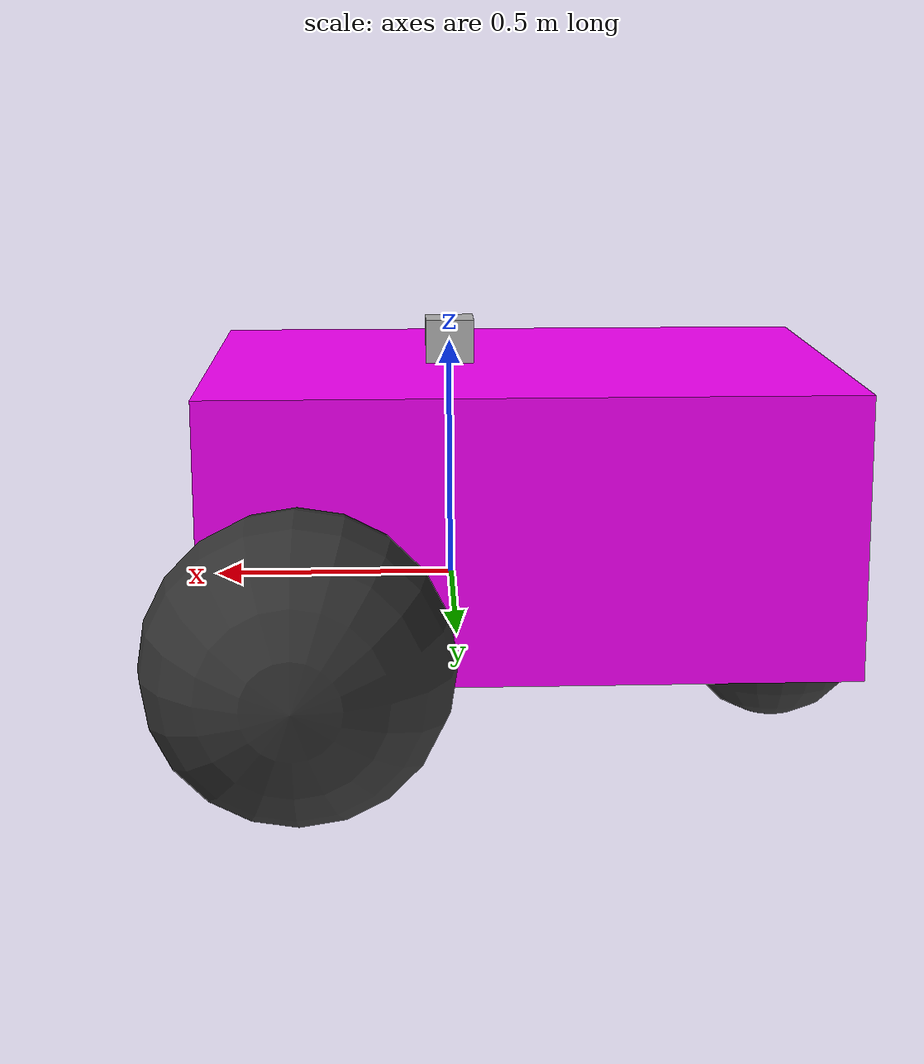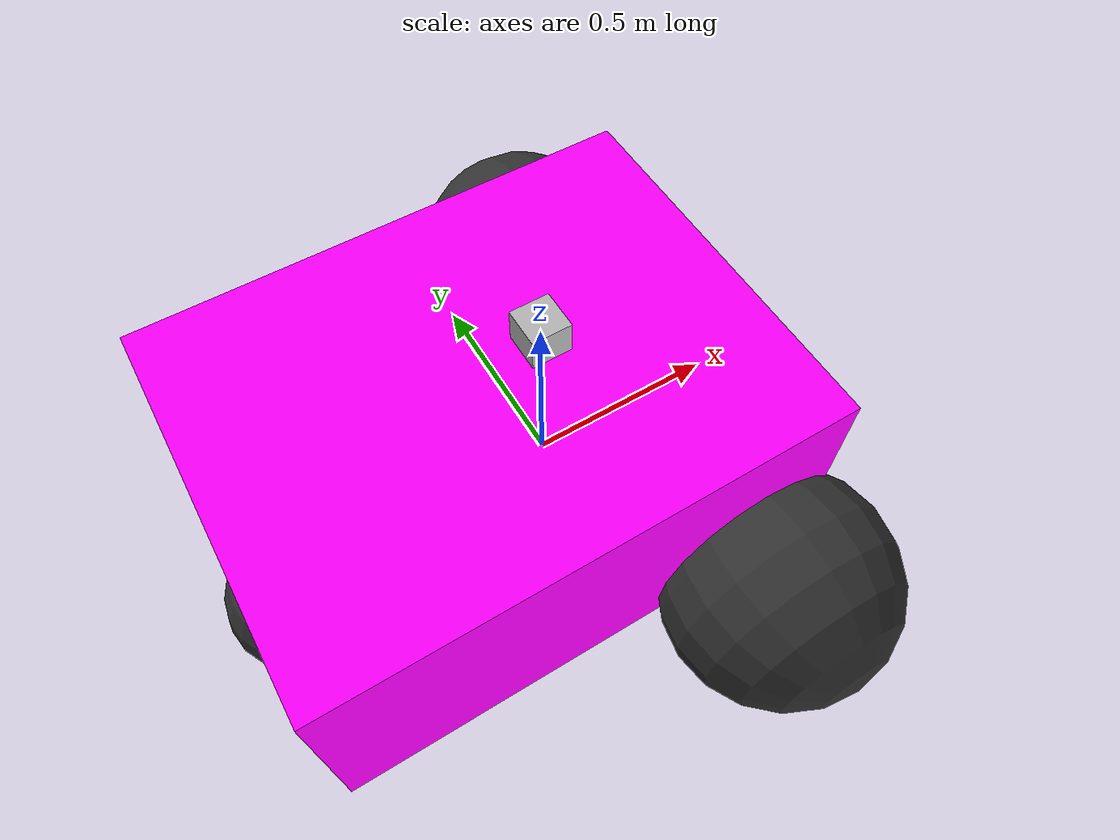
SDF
<?xml version="1.0" ?>
<sdf version="1.8">
    <model name='diff_drive'>
      <link name='chassis'>
        <pose>-0.151427 -0 0.175 0 -0 0</pose>
        <inertial>
          <mass>1.14395</mass>
          <inertia>
            <ixx>0.126164</ixx>
            <ixy>0</ixy>
            <ixz>0</ixz>
            <iyy>0.416519</iyy>
            <iyz>0</iyz>
            <izz>0.481014</izz>
          </inertia>
        </inertial>
        <visual name='visual_chassis'>
          <geometry>
            <box>
              <size>1.3 1 0.568726</size>
            </box>
          </geometry>
          <material>
            <ambient>1.0 0.0 1.0 1</ambient>
            <diffuse>1.0 0.0 1.0 1</diffuse>
            <specular>1.0 0.0 1.0 1</specular>
          </material>
        </visual>
        <collision name='collision_chassis'>
          <geometry>
            <box>
              <size>1.3 1 0.568726</size>
            </box>
          </geometry>
        </collision>
      </link>

      <link name='left_wheel'>
        <pose>0.3 0.625029 -0.025 -1.5707 0 0</pose>
        <inertial>
          <mass>2</mass>
          <inertia>
            <ixx>0.145833</ixx>
            <ixy>0</ixy>
            <ixz>0</ixz>
            <iyy>0.145833</iyy>
            <iyz>0</iyz>
            <izz>0.125</izz>
          </inertia>
        </inertial>
        <visual name='visual_left_wheel'>
          <geometry>
            <sphere>
              <radius>0.3</radius>
            </sphere>
          </geometry>
          <material>
            <ambient>0.2 0.2 0.2 1</ambient>
            <diffuse>0.2 0.2 0.2 1</diffuse>
            <specular>0.2 0.2 0.2 1</specular>
          </material>
        </visual>
        <collision name='collision_left_wheel'>
          <geometry>
            <sphere>
              <radius>0.3</radius>
            </sphere>
          </geometry>
        </collision>
      </link>

      <link name='right_wheel'>
        <pose>0.3 -0.625029 -0.025 -1.5707 0 0</pose>
        <inertial>
          <mass>2</mass>
          <inertia>
            <ixx>0.145833</ixx>
            <ixy>0</ixy>
            <ixz>0</ixz>
            <iyy>0.145833</iyy>
            <iyz>0</iyz>
            <izz>0.125</izz>
          </inertia>
        </inertial>
        <visual name='visual_right_wheel'>
          <geometry>
            <sphere>
              <radius>0.3</radius>
            </sphere>
          </geometry>
          <material>
            <ambient>0.2 0.2 0.2 1</ambient>
            <diffuse>0.2 0.2 0.2 1</diffuse>
            <specular>0.2 0.2 0.2 1</specular>
          </material>
        </visual>
        <collision name='collision_right_wheel'>
          <geometry>
            <sphere>
              <radius>0.3</radius>
            </sphere>
          </geometry>
        </collision>
      </link>

      <link name='caster'>
        <pose>-0.7 -0 -0.125 0 -0 0</pose>
        <inertial>
          <mass>1</mass>
          <inertia>
            <ixx>0.1</ixx>
            <ixy>0</ixy>
            <ixz>0</ixz>
            <iyy>0.1</iyy>
            <iyz>0</iyz>
            <izz>0.1</izz>
          </inertia>
        </inertial>
        <visual name='visual_caster'>
          <geometry>
            <sphere>
              <radius>0.2</radius>
            </sphere>
          </geometry>
          <material>
            <ambient>0.2 0.2 0.2 1</ambient>
            <diffuse>0.2 0.2 0.2 1</diffuse>
            <specular>0.2 0.2 0.2 1</specular>
          </material>
        </visual>
        <collision name='collision_caster'>
          <geometry>
            <sphere>
              <radius>0.2</radius>
            </sphere>
          </geometry>
        </collision>
      </link>

      <link name="lidar_link">
        <pose>0 0 0.5 0 0 0</pose>
        <inertial>
          <mass>0.1</mass>
          <inertia>
            <ixx>0.000166667</ixx>
            <iyy>0.000166667</iyy>
            <izz>0.000166667</izz>
          </inertia>
        </inertial>
        <collision name="collision">
          <geometry>
            <box>
              <size>0.1 0.1 0.1</size>
            </box>
          </geometry>
        </collision>
        <visual name="visual">
          <geometry>
            <box>
              <size>0.1 0.1 0.1</size>
            </box>
          </geometry>
        </visual>
        <sensor name='gpu_lidar' type='gpu_lidar'>
          <pose>0 0 0 0 0 0</pose>
          <topic>scan</topic>
           <gz_frame_id>diff_drive/lidar_link</gz_frame_id>
          <update_rate>10</update_rate>
          <lidar>
            <scan>
              <horizontal>
                <samples>640</samples>
                <resolution>1</resolution>
                <min_angle>-1.57</min_angle>
                <max_angle>1.57</max_angle>
              </horizontal>
              <vertical>
                <samples>1</samples>
                <resolution>1</resolution>
                <min_angle>0.0</min_angle>
                <max_angle>0.0</max_angle>
              </vertical>
            </scan>
            <range>
              <min>0.08</min>
              <max>10.0</max>
              <resolution>0.01</resolution>
            </range>
          </lidar>
          <visualize>true</visualize>
        </sensor>
      </link>

      <link name="rlidar_link">
        <pose>0 0 0.5 0 0 0</pose>
        <inertial>
          <mass>0.1</mass>
          <inertia>
            <ixx>0.000166667</ixx>
            <iyy>0.000166667</iyy>
            <izz>0.000166667</izz>
          </inertia>
        </inertial>
        <collision name="collision">
          <geometry>
            <box>
              <size>0.1 0.1 0.1</size>
            </box>
          </geometry>
        </collision>
        <visual name="visual">
          <geometry>
            <box>
              <size>0.1 0.1 0.1</size>
            </box>
          </geometry>
        </visual>
        <sensor name='lidar_derecha' type='gpu_lidar'>
          <pose>0 0 0 0 0 0</pose>
          <topic>rscan</topic>
           <gz_frame_id>diff_drive/lidar_link</gz_frame_id>
          <update_rate>10</update_rate>
          <lidar>
            <scan>
              <horizontal>
                <samples>640</samples>
                <resolution>1</resolution>
                <min_angle>4.18</min_angle>
                <max_angle>5.23</max_angle>
              </horizontal>
              <vertical>
                <samples>1</samples>
                <resolution>1</resolution>
                <min_angle>0.0</min_angle>
                <max_angle>0.0</max_angle>
              </vertical>
            </scan>
            <range>
              <min>0.08</min>
              <max>10.0</max>
              <resolution>0.01</resolution>
            </range>
          </lidar>
          <visualize>true</visualize>
        </sensor>
      </link>

      <joint name='lidar_joint' type='fixed'>
        <parent>chassis</parent>
        <child>lidar_link</child>
      </joint>

      <joint name='rlidar_joint' type='fixed'>
        <parent>chassis</parent>
        <child>rlidar_link</child>
      </joint>

      <joint name='left_wheel_joint' type='revolute'>
        <parent>chassis</parent>
        <child>left_wheel</child>
        <axis>
          <xyz>0 0 1</xyz>
          <limit>
            <lower>-1.79769e+308</lower>
            <upper>1.79769e+308</upper>
          </limit>
        </axis>
      </joint>

      <joint name='right_wheel_joint' type='revolute'>
        <parent>chassis</parent>
        <child>right_wheel</child>
        <axis>
          <xyz>0 0 1</xyz>
          <limit>
            <lower>-1.79769e+308</lower>
            <upper>1.79769e+308</upper>
          </limit>
        </axis>
      </joint>

      <joint name='caster_wheel' type='ball'>
        <parent>chassis</parent>
        <child>caster</child>
      </joint>

      <plugin
        filename="ignition-gazebo-diff-drive-system"
        name="ignition::gazebo::systems::DiffDrive">
        <left_joint>left_wheel_joint</left_joint>
        <right_joint>right_wheel_joint</right_joint>
        <wheel_separation>1.25</wheel_separation>
        <wheel_radius>0.3</wheel_radius>
        <odom_publish_frequency>1</odom_publish_frequency>
        <max_linear_acceleration>1</max_linear_acceleration>
        <min_linear_acceleration>-1</min_linear_acceleration>
        <max_angular_acceleration>2</max_angular_acceleration>
        <min_angular_acceleration>-2</min_angular_acceleration>
        <max_linear_velocity>3</max_linear_velocity>
        <min_linear_velocity>-0.5</min_linear_velocity>
        <max_angular_velocity>1</max_angular_velocity>
        <min_angular_velocity>-1</min_angular_velocity>
      </plugin>
    </model>
</sdf>
